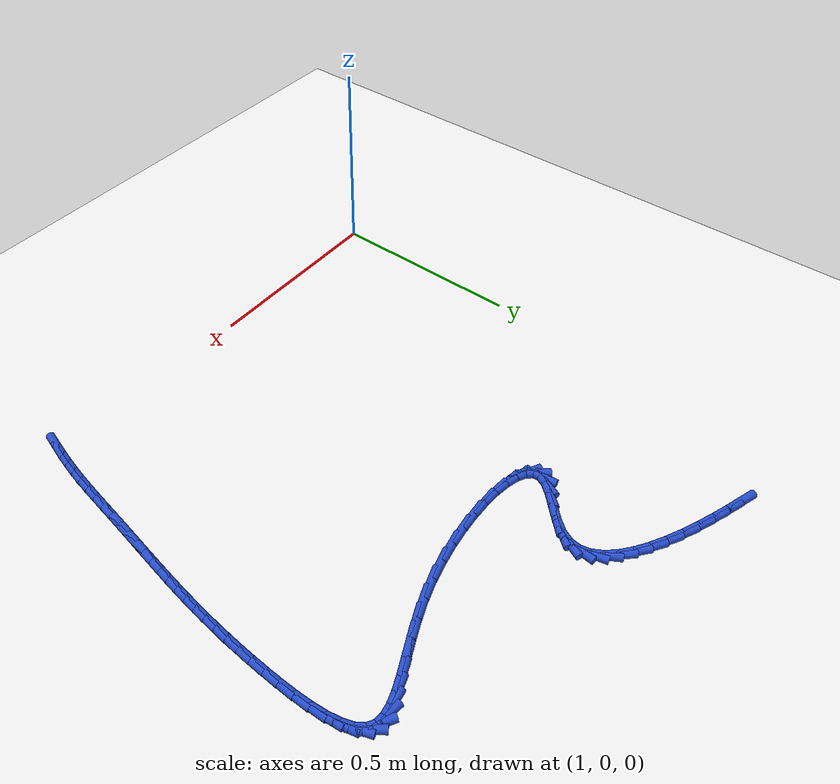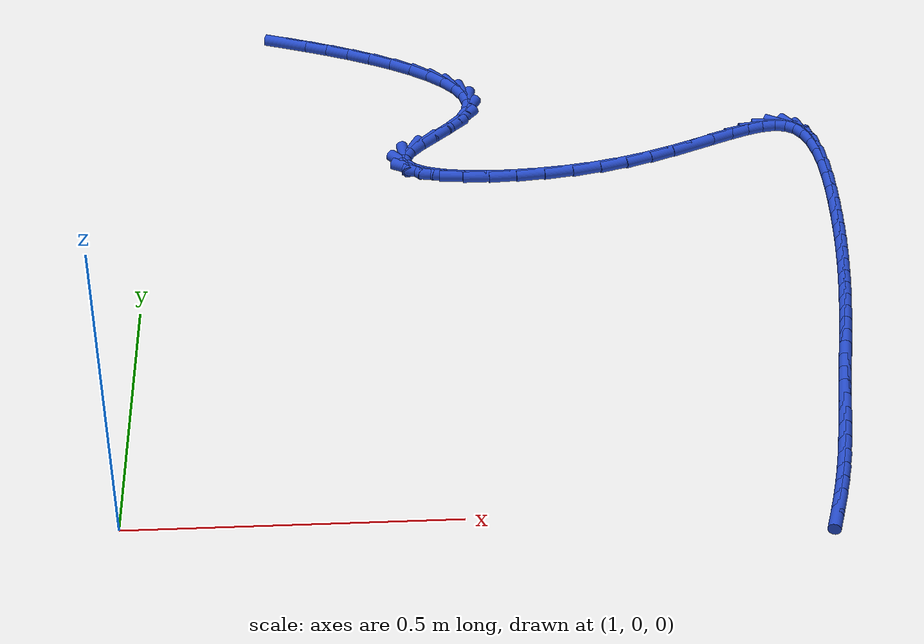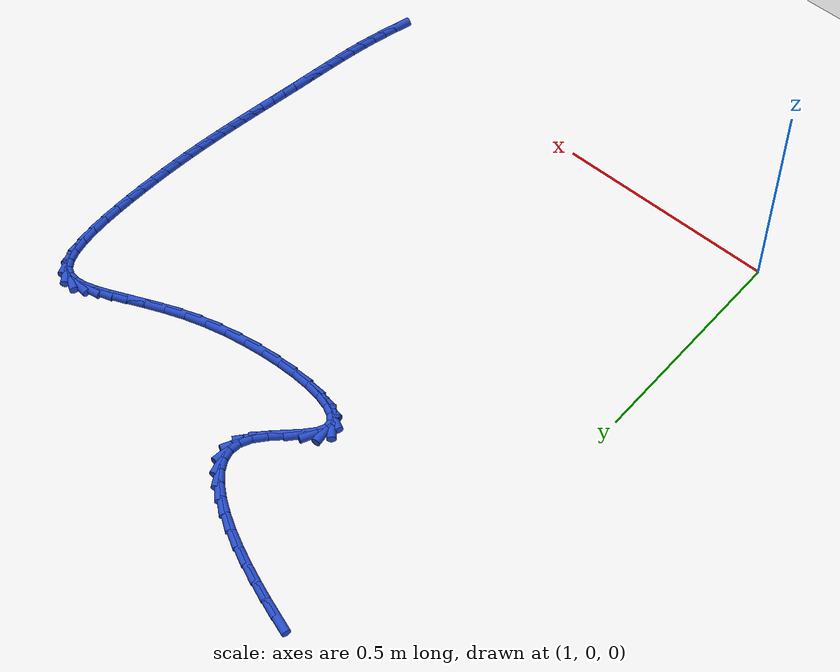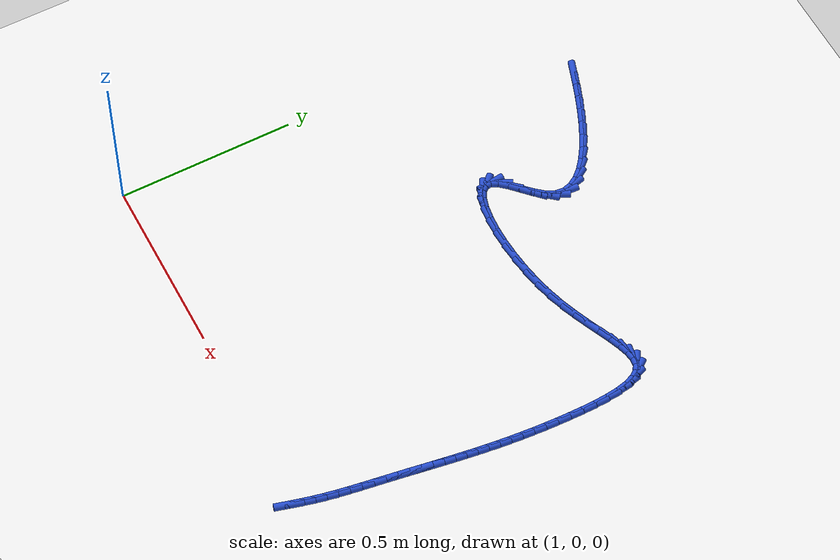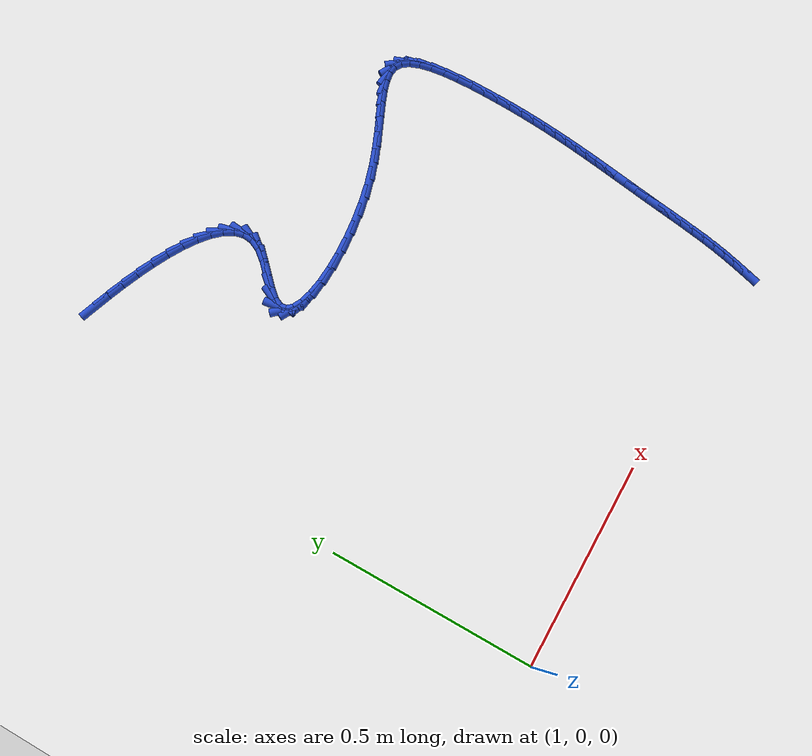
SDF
<sdf version="1.6">
 <world name="default">
  <model name="ground_plane">
   <static>1</static>
   <link name="link">
    <collision name="collision">
     <geometry><plane><normal>0 0 1</normal><size>100 100</size></plane></geometry>
     <surface><friction><ode><mu>100</mu><mu2>50</mu2></ode></friction></surface>
    </collision>
    <visual name="visual">
     <cast_shadows>0</cast_shadows>
     <geometry><plane><normal>0 0 1</normal><size>100 100</size></plane></geometry>
     <material>
      <script><uri>file://media/materials/scripts/gazebo.material</uri><name>Gazebo/WhiteGlow</name></script>
     </material>
    </visual>
   </link>
  </model>
  <model name="line">
   <link name="link_68">
    <pose>1.2202897062401392 1.2758575440553679 0.01 0 1.57 -0.33672678658293276</pose>
    <collision name="collision">
     <geometry><cylinder><radius>0.01</radius><length>0.08</length></cylinder></geometry>
    </collision>
    <visual name="visual">
     <material>
      <script><name>Gazebo/Blue</name><uri>file://media/materials/scripts/gazebo.material</uri></script>
     </material>
     <geometry><cylinder><radius>0.01</radius><length>0.08</length></cylinder></geometry>
    </visual>
   </link>
   <link name="link_69">
    <pose>1.2583109783198574 1.2625478808855013 0.01 0 1.57 -0.3601299603547859</pose>
    <collision name="collision">
     <geometry><cylinder><radius>0.01</radius><length>0.08</length></cylinder></geometry>
    </collision>
    <visual name="visual">
     <material>
      <script><name>Gazebo/Blue</name><uri>file://media/materials/scripts/gazebo.material</uri></script>
     </material>
     <geometry><cylinder><radius>0.01</radius><length>0.08</length></cylinder></geometry>
    </visual>
   </link>
   <link name="link_70">
    <pose>1.2976164029795207 1.247747374808648 0.01 0 1.57 -0.3884289713091154</pose>
    <collision name="collision">
     <geometry><cylinder><radius>0.01</radius><length>0.08</length></cylinder></geometry>
    </collision>
    <visual name="visual">
     <material>
      <script><name>Gazebo/Blue</name><uri>file://media/materials/scripts/gazebo.material</uri></script>
     </material>
     <geometry><cylinder><radius>0.01</radius><length>0.08</length></cylinder></geometry>
    </visual>
   </link>
   <link name="link_71">
    <pose>1.3372088932361523 1.2315453510112444 0.01 0 1.57 -0.42321970724465235</pose>
    <collision name="collision">
     <geometry><cylinder><radius>0.01</radius><length>0.08</length></cylinder></geometry>
    </collision>
    <visual name="visual">
     <material>
      <script><name>Gazebo/Blue</name><uri>file://media/materials/scripts/gazebo.material</uri></script>
     </material>
     <geometry><cylinder><radius>0.01</radius><length>0.08</length></cylinder></geometry>
    </visual>
   </link>
   <link name="link_72">
    <pose>1.3760913621067756 1.2140311346797272 0.01 0 1.57 -0.46685754430328025</pose>
    <collision name="collision">
     <geometry><cylinder><radius>0.01</radius><length>0.08</length></cylinder></geometry>
    </collision>
    <visual name="visual">
     <material>
      <script><name>Gazebo/Blue</name><uri>file://media/materials/scripts/gazebo.material</uri></script>
     </material>
     <geometry><cylinder><radius>0.01</radius><length>0.08</length></cylinder></geometry>
    </visual>
   </link>
   <link name="link_73">
    <pose>1.4132667226084132 1.1952940510005328 0.01 0 1.57 -0.5229172722453892</pose>
    <collision name="collision">
     <geometry><cylinder><radius>0.01</radius><length>0.08</length></cylinder></geometry>
    </collision>
    <visual name="visual">
     <material>
      <script><name>Gazebo/Blue</name><uri>file://media/materials/scripts/gazebo.material</uri></script>
     </material>
     <geometry><cylinder><radius>0.01</radius><length>0.08</length></cylinder></geometry>
    </visual>
   </link>
   <link name="link_74">
    <pose>1.4477378877580875 1.1754234251600972 0.01 0 1.57 -0.5969837903980968</pose>
    <collision name="collision">
     <geometry><cylinder><radius>0.01</radius><length>0.08</length></cylinder></geometry>
    </collision>
    <visual name="visual">
     <material>
      <script><name>Gazebo/Blue</name><uri>file://media/materials/scripts/gazebo.material</uri></script>
     </material>
     <geometry><cylinder><radius>0.01</radius><length>0.08</length></cylinder></geometry>
    </visual>
   </link>
   <link name="link_75">
    <pose>1.4785077705728222 1.1545085823448573 0.01 0 1.57 -0.6979772121660366</pose>
    <collision name="collision">
     <geometry><cylinder><radius>0.01</radius><length>0.08</length></cylinder></geometry>
    </collision>
    <visual name="visual">
     <material>
      <script><name>Gazebo/Blue</name><uri>file://media/materials/scripts/gazebo.material</uri></script>
     </material>
     <geometry><cylinder><radius>0.01</radius><length>0.08</length></cylinder></geometry>
    </visual>
   </link>
   <link name="link_76">
    <pose>1.5045792840696408 1.13263884774125 0.01 0 1.57 -0.8400680507557571</pose>
    <collision name="collision">
     <geometry><cylinder><radius>0.01</radius><length>0.08</length></cylinder></geometry>
    </collision>
    <visual name="visual">
     <material>
      <script><name>Gazebo/Blue</name><uri>file://media/materials/scripts/gazebo.material</uri></script>
     </material>
     <geometry><cylinder><radius>0.01</radius><length>0.08</length></cylinder></geometry>
    </visual>
   </link>
   <link name="link_77">
    <pose>1.5249553412655652 1.1099035465357106 0.01 0 1.57 -1.0437237522075464</pose>
    <collision name="collision">
     <geometry><cylinder><radius>0.01</radius><length>0.08</length></cylinder></geometry>
    </collision>
    <visual name="visual">
     <material>
      <script><name>Gazebo/Blue</name><uri>file://media/materials/scripts/gazebo.material</uri></script>
     </material>
     <geometry><cylinder><radius>0.01</radius><length>0.08</length></cylinder></geometry>
    </visual>
   </link>
   <link name="link_78">
    <pose>1.53863885517762 1.086392003914676 0.01 0 1.57 -1.327986443380439</pose>
    <collision name="collision">
     <geometry><cylinder><radius>0.01</radius><length>0.08</length></cylinder></geometry>
    </collision>
    <visual name="visual">
     <material>
      <script><name>Gazebo/Blue</name><uri>file://media/materials/scripts/gazebo.material</uri></script>
     </material>
     <geometry><cylinder><radius>0.01</radius><length>0.08</length></cylinder></geometry>
    </visual>
   </link>
   <link name="link_79">
    <pose>1.5446327388228265 1.0621935450645834 0.01 0 1.57 1.4626209662618692</pose>
    <collision name="collision">
     <geometry><cylinder><radius>0.01</radius><length>0.08</length></cylinder></geometry>
    </collision>
    <visual name="visual">
     <material>
      <script><name>Gazebo/Blue</name><uri>file://media/materials/scripts/gazebo.material</uri></script>
     </material>
     <geometry><cylinder><radius>0.01</radius><length>0.08</length></cylinder></geometry>
    </visual>
   </link>
   <link name="link_80">
    <pose>1.541939905218209 1.0373974951718683 0.01 0 1.57 1.1165614700404491</pose>
    <collision name="collision">
     <geometry><cylinder><radius>0.01</radius><length>0.08</length></cylinder></geometry>
    </collision>
    <visual name="visual">
     <material>
      <script><name>Gazebo/Blue</name><uri>file://media/materials/scripts/gazebo.material</uri></script>
     </material>
     <geometry><cylinder><radius>0.01</radius><length>0.08</length></cylinder></geometry>
    </visual>
   </link>
   <link name="link_81">
    <pose>1.5295852393779588 1.0120955323657894 0.01 0 1.57 0.8813451083723117</pose>
    <collision name="collision">
     <geometry><cylinder><radius>0.01</radius><length>0.08</length></cylinder></geometry>
    </collision>
    <visual name="visual">
     <material>
      <script><name>Gazebo/Blue</name><uri>file://media/materials/scripts/gazebo.material</uri></script>
     </material>
     <geometry><cylinder><radius>0.01</radius><length>0.08</length></cylinder></geometry>
    </visual>
   </link>
   <link name="link_82">
    <pose>1.5085578605676997 0.9865896811927 0.01 0 1.57 0.7816577707095528</pose>
    <collision name="collision">
     <geometry><cylinder><radius>0.01</radius><length>0.08</length></cylinder></geometry>
    </collision>
    <visual name="visual">
     <material>
      <script><name>Gazebo/Blue</name><uri>file://media/materials/scripts/gazebo.material</uri></script>
     </material>
     <geometry><cylinder><radius>0.01</radius><length>0.08</length></cylinder></geometry>
    </visual>
   </link>
   <link name="link_83">
    <pose>1.4833357869888175 0.9615555862955489 0.01 0 1.57 0.7702911883793834</pose>
    <collision name="collision">
     <geometry><cylinder><radius>0.01</radius><length>0.08</length></cylinder></geometry>
    </collision>
    <visual name="visual">
     <material>
      <script><name>Gazebo/Blue</name><uri>file://media/materials/scripts/gazebo.material</uri></script>
     </material>
     <geometry><cylinder><radius>0.01</radius><length>0.08</length></cylinder></geometry>
    </visual>
   </link>
   <link name="link_84">
    <pose>1.4587558594977454 0.9377073180090296 0.01 0 1.57 0.8546533311582095</pose>
    <collision name="collision">
     <geometry><cylinder><radius>0.01</radius><length>0.08</length></cylinder></geometry>
    </collision>
    <visual name="visual">
     <material>
      <script><name>Gazebo/Blue</name><uri>file://media/materials/scripts/gazebo.material</uri></script>
     </material>
     <geometry><cylinder><radius>0.01</radius><length>0.08</length></cylinder></geometry>
    </visual>
   </link>
   <link name="link_85">
    <pose>1.4396549189509165 0.9157589466678351 0.01 0 1.57 1.1329390493406006</pose>
    <collision name="collision">
     <geometry><cylinder><radius>0.01</radius><length>0.08</length></cylinder></geometry>
    </collision>
    <visual name="visual">
     <material>
      <script><name>Gazebo/Blue</name><uri>file://media/materials/scripts/gazebo.material</uri></script>
     </material>
     <geometry><cylinder><radius>0.01</radius><length>0.08</length></cylinder></geometry>
    </visual>
   </link>
   <link name="link_86">
    <pose>1.4305872710056804 0.8963904814276183 0.01 0 1.57 -1.4453552133090635</pose>
    <collision name="collision">
     <geometry><cylinder><radius>0.01</radius><length>0.08</length></cylinder></geometry>
    </collision>
    <visual name="visual">
     <material>
      <script><name>Gazebo/Blue</name><uri>file://media/materials/scripts/gazebo.material</uri></script>
     </material>
     <geometry><cylinder><radius>0.01</radius><length>0.08</length></cylinder></geometry>
    </visual>
   </link>
   <link name="link_87">
    <pose>1.4326708525440945 0.8798676582048512 0.01 0 1.57 -0.8484726601106188</pose>
    <collision name="collision">
     <geometry><cylinder><radius>0.01</radius><length>0.08</length></cylinder></geometry>
    </collision>
    <visual name="visual">
     <material>
      <script><name>Gazebo/Blue</name><uri>file://media/materials/scripts/gazebo.material</uri></script>
     </material>
     <geometry><cylinder><radius>0.01</radius><length>0.08</length></cylinder></geometry>
    </visual>
   </link>
   <link name="link_88">
    <pose>1.4447322631412833 0.8661799795457624 0.01 0 1.57 -0.48101078128270286</pose>
    <collision name="collision">
     <geometry><cylinder><radius>0.01</radius><length>0.08</length></cylinder></geometry>
    </collision>
    <visual name="visual">
     <material>
      <script><name>Gazebo/Blue</name><uri>file://media/materials/scripts/gazebo.material</uri></script>
     </material>
     <geometry><cylinder><radius>0.01</radius><length>0.08</length></cylinder></geometry>
    </visual>
   </link>
   <link name="link_89">
    <pose>1.4655564309040412 0.8553119242708696 0.01 0 1.57 -0.2769210291822815</pose>
    <collision name="collision">
     <geometry><cylinder><radius>0.01</radius><length>0.08</length></cylinder></geometry>
    </collision>
    <visual name="visual">
     <material>
      <script><name>Gazebo/Blue</name><uri>file://media/materials/scripts/gazebo.material</uri></script>
     </material>
     <geometry><cylinder><radius>0.01</radius><length>0.08</length></cylinder></geometry>
    </visual>
   </link>
   <link name="link_90">
    <pose>1.4939282839391643 0.8472479712006911 0.01 0 1.57 -0.150853617896155</pose>
    <collision name="collision">
     <geometry><cylinder><radius>0.01</radius><length>0.08</length></cylinder></geometry>
    </collision>
    <visual name="visual">
     <material>
      <script><name>Gazebo/Blue</name><uri>file://media/materials/scripts/gazebo.material</uri></script>
     </material>
     <geometry><cylinder><radius>0.01</radius><length>0.08</length></cylinder></geometry>
    </visual>
   </link>
   <link name="link_91">
    <pose>1.528632750353449 0.8419725991557455 0.01 0 1.57 -0.06275490909228171</pose>
    <collision name="collision">
     <geometry><cylinder><radius>0.01</radius><length>0.08</length></cylinder></geometry>
    </collision>
    <visual name="visual">
     <material>
      <script><name>Gazebo/Blue</name><uri>file://media/materials/scripts/gazebo.material</uri></script>
     </material>
     <geometry><cylinder><radius>0.01</radius><length>0.08</length></cylinder></geometry>
    </visual>
   </link>
   <link name="link_92">
    <pose>1.5684547582536896 0.8394702869565511 0.01 0 1.57 0.005837086754264454</pose>
    <collision name="collision">
     <geometry><cylinder><radius>0.01</radius><length>0.08</length></cylinder></geometry>
    </collision>
    <visual name="visual">
     <material>
      <script><name>Gazebo/Blue</name><uri>file://media/materials/scripts/gazebo.material</uri></script>
     </material>
     <geometry><cylinder><radius>0.01</radius><length>0.08</length></cylinder></geometry>
    </visual>
   </link>
   <link name="link_93">
    <pose>1.6121792357466815 0.8397255134236257 0.01 0 1.57 0.06448969555384837</pose>
    <collision name="collision">
     <geometry><cylinder><radius>0.01</radius><length>0.08</length></cylinder></geometry>
    </collision>
    <visual name="visual">
     <material>
      <script><name>Gazebo/Blue</name><uri>file://media/materials/scripts/gazebo.material</uri></script>
     </material>
     <geometry><cylinder><radius>0.01</radius><length>0.08</length></cylinder></geometry>
    </visual>
   </link>
   <link name="link_94">
    <pose>1.658591110939221 0.8427227573774878 0.01 0 1.57 0.11896849007562103</pose>
    <collision name="collision">
     <geometry><cylinder><radius>0.01</radius><length>0.08</length></cylinder></geometry>
    </collision>
    <visual name="visual">
     <material>
      <script><name>Gazebo/Blue</name><uri>file://media/materials/scripts/gazebo.material</uri></script>
     </material>
     <geometry><cylinder><radius>0.01</radius><length>0.08</length></cylinder></geometry>
    </visual>
   </link>
   <link name="link_95">
    <pose>1.7064753119381046 0.8484464976386561 0.01 0 1.57 0.17344641766334956</pose>
    <collision name="collision">
     <geometry><cylinder><radius>0.01</radius><length>0.08</length></cylinder></geometry>
    </collision>
    <visual name="visual">
     <material>
      <script><name>Gazebo/Blue</name><uri>file://media/materials/scripts/gazebo.material</uri></script>
     </material>
     <geometry><cylinder><radius>0.01</radius><length>0.08</length></cylinder></geometry>
    </visual>
   </link>
   <link name="link_96">
    <pose>1.7546167668501254 0.8568812130276482 0.01 0 1.57 0.2316556411406692</pose>
    <collision name="collision">
     <geometry><cylinder><radius>0.01</radius><length>0.08</length></cylinder></geometry>
    </collision>
    <visual name="visual">
     <material>
      <script><name>Gazebo/Blue</name><uri>file://media/materials/scripts/gazebo.material</uri></script>
     </material>
     <geometry><cylinder><radius>0.01</radius><length>0.08</length></cylinder></geometry>
    </visual>
   </link>
   <link name="link_97">
    <pose>1.8018004037820798 0.8680113823649824 0.01 0 1.57 0.2965117265925648</pose>
    <collision name="collision">
     <geometry><cylinder><radius>0.01</radius><length>0.08</length></cylinder></geometry>
    </collision>
    <visual name="visual">
     <material>
      <script><name>Gazebo/Blue</name><uri>file://media/materials/scripts/gazebo.material</uri></script>
     </material>
     <geometry><cylinder><radius>0.01</radius><length>0.08</length></cylinder></geometry>
    </visual>
   </link>
   <link name="link_98">
    <pose>1.8468548013407047 0.8817763249263997 0.01 0 1.57 0.3553229764662927</pose>
    <collision name="collision">
     <geometry><cylinder><radius>0.01</radius><length>0.08</length></cylinder></geometry>
    </collision>
    <visual name="visual">
     <material>
      <script><name>Gazebo/Blue</name><uri>file://media/materials/scripts/gazebo.material</uri></script>
     </material>
     <geometry><cylinder><radius>0.01</radius><length>0.08</length></cylinder></geometry>
    </visual>
   </link>
   <link name="link_99">
    <pose>1.8892099494967336 0.8974931571844786 0.01 0 1.57 0.3961832663904021</pose>
    <collision name="collision">
     <geometry><cylinder><radius>0.01</radius><length>0.08</length></cylinder></geometry>
    </collision>
    <visual name="visual">
     <material>
      <script><name>Gazebo/Blue</name><uri>file://media/materials/scripts/gazebo.material</uri></script>
     </material>
     <geometry><cylinder><radius>0.01</radius><length>0.08</length></cylinder></geometry>
    </visual>
   </link>
   <link name="link_100">
    <pose>1.9287336979068277 0.9140259986445292 0.01 0 1.57 0.41706707195978754</pose>
    <collision name="collision">
     <geometry><cylinder><radius>0.01</radius><length>0.08</length></cylinder></geometry>
    </collision>
    <visual name="visual">
     <material>
      <script><name>Gazebo/Blue</name><uri>file://media/materials/scripts/gazebo.material</uri></script>
     </material>
     <geometry><cylinder><radius>0.01</radius><length>0.08</length></cylinder></geometry>
    </visual>
   </link>
   <link name="link_101">
    <pose>1.9653038000071914 0.9302287226479745 0.01 0 1.57 0.414232390930549</pose>
    <collision name="collision">
     <geometry><cylinder><radius>0.01</radius><length>0.08</length></cylinder></geometry>
    </collision>
    <visual name="visual">
     <material>
      <script><name>Gazebo/Blue</name><uri>file://media/materials/scripts/gazebo.material</uri></script>
     </material>
     <geometry><cylinder><radius>0.01</radius><length>0.08</length></cylinder></geometry>
    </visual>
   </link>
   <link name="link_102">
    <pose>1.9987980092340356 0.94495520253624 0.01 0 1.57 0.38009887192462083</pose>
    <collision name="collision">
     <geometry><cylinder><radius>0.01</radius><length>0.08</length></cylinder></geometry>
    </collision>
    <visual name="visual">
     <material>
      <script><name>Gazebo/Blue</name><uri>file://media/materials/scripts/gazebo.material</uri></script>
     </material>
     <geometry><cylinder><radius>0.01</radius><length>0.08</length></cylinder></geometry>
    </visual>
   </link>
   <link name="link_103">
    <pose>2.0290940790235674 0.9570593116507498 0.01 0 1.57 0.299697329849995</pose>
    <collision name="collision">
     <geometry><cylinder><radius>0.01</radius><length>0.08</length></cylinder></geometry>
    </collision>
    <visual name="visual">
     <material>
      <script><name>Gazebo/Blue</name><uri>file://media/materials/scripts/gazebo.material</uri></script>
     </material>
     <geometry><cylinder><radius>0.01</radius><length>0.08</length></cylinder></geometry>
    </visual>
   </link>
   <link name="link_104">
    <pose>2.056069762811996 0.9653949233329286 0.01 0 1.57 0.14435828151628421</pose>
    <collision name="collision">
     <geometry><cylinder><radius>0.01</radius><length>0.08</length></cylinder></geometry>
    </collision>
    <visual name="visual">
     <material>
      <script><name>Gazebo/Blue</name><uri>file://media/materials/scripts/gazebo.material</uri></script>
     </material>
     <geometry><cylinder><radius>0.01</radius><length>0.08</length></cylinder></geometry>
    </visual>
   </link>
   <link name="link_105">
    <pose>2.0796028140355283 0.9688159109242005 0.01 0 1.57 -0.1314363934344031</pose>
    <collision name="collision">
     <geometry><cylinder><radius>0.01</radius><length>0.08</length></cylinder></geometry>
    </collision>
    <visual name="visual">
     <material>
      <script><name>Gazebo/Blue</name><uri>file://media/materials/scripts/gazebo.material</uri></script>
     </material>
     <geometry><cylinder><radius>0.01</radius><length>0.08</length></cylinder></geometry>
    </visual>
   </link>
   <link name="link_106">
    <pose>2.0995709861303733 0.96617614776599 0.01 0 1.57 -0.543935301549268</pose>
    <collision name="collision">
     <geometry><cylinder><radius>0.01</radius><length>0.08</length></cylinder></geometry>
    </collision>
    <visual name="visual">
     <material>
      <script><name>Gazebo/Blue</name><uri>file://media/materials/scripts/gazebo.material</uri></script>
     </material>
     <geometry><cylinder><radius>0.01</radius><length>0.08</length></cylinder></geometry>
    </visual>
   </link>
   <link name="link_107">
    <pose>2.1158520325691557 0.956329507358838 0.01 0 1.57 -0.9550442450317014</pose>
    <collision name="collision">
     <geometry><cylinder><radius>0.01</radius><length>0.08</length></cylinder></geometry>
    </collision>
    <visual name="visual">
     <material>
      <script><name>Gazebo/Blue</name><uri>file://media/materials/scripts/gazebo.material</uri></script>
     </material>
     <geometry><cylinder><radius>0.01</radius><length>0.08</length></cylinder></geometry>
    </visual>
   </link>
   <link name="link_108">
    <pose>2.128422660538849 0.9385622225441891 0.01 0 1.57 -1.2135072919934171</pose>
    <collision name="collision">
     <geometry><cylinder><radius>0.01</radius><length>0.08</length></cylinder></geometry>
    </collision>
    <visual name="visual">
     <material>
      <script><name>Gazebo/Blue</name><uri>file://media/materials/scripts/gazebo.material</uri></script>
     </material>
     <geometry><cylinder><radius>0.01</radius><length>0.08</length></cylinder></geometry>
    </visual>
   </link>
   <link name="link_109">
    <pose>2.1376469138501464 0.9138529195056121 0.01 0 1.57 -1.364362433674167</pose>
    <collision name="collision">
     <geometry><cylinder><radius>0.01</radius><length>0.08</length></cylinder></geometry>
    </collision>
    <visual name="visual">
     <material>
      <script><name>Gazebo/Blue</name><uri>file://media/materials/scripts/gazebo.material</uri></script>
     </material>
     <geometry><cylinder><radius>0.01</radius><length>0.08</length></cylinder></geometry>
    </visual>
   </link>
   <link name="link_110">
    <pose>2.1439835961187974 0.8835942592825415 0.01 0 1.57 -1.4577291419999643</pose>
    <collision name="collision">
     <geometry><cylinder><radius>0.01</radius><length>0.08</length></cylinder></geometry>
    </collision>
    <visual name="visual">
     <material>
      <script><name>Gazebo/Blue</name><uri>file://media/materials/scripts/gazebo.material</uri></script>
     </material>
     <geometry><cylinder><radius>0.01</radius><length>0.08</length></cylinder></geometry>
    </visual>
   </link>
   <link name="link_111">
    <pose>2.147891510960549 0.8491789029144099 0.01 0 1.57 -1.518719122018012</pose>
    <collision name="collision">
     <geometry><cylinder><radius>0.01</radius><length>0.08</length></cylinder></geometry>
    </collision>
    <visual name="visual">
     <material>
      <script><name>Gazebo/Blue</name><uri>file://media/materials/scripts/gazebo.material</uri></script>
     </material>
     <geometry><cylinder><radius>0.01</radius><length>0.08</length></cylinder></geometry>
    </visual>
   </link>
   <link name="link_112">
    <pose>2.14982946199115 0.811999511440651 0.01 0 1.57 -1.5597259007201365</pose>
    <collision name="collision">
     <geometry><cylinder><radius>0.01</radius><length>0.08</length></cylinder></geometry>
    </collision>
    <visual name="visual">
     <material>
      <script><name>Gazebo/Blue</name><uri>file://media/materials/scripts/gazebo.material</uri></script>
     </material>
     <geometry><cylinder><radius>0.01</radius><length>0.08</length></cylinder></geometry>
    </visual>
   </link>
   <link name="link_113">
    <pose>2.1502562528263502 0.7734487459006977 0.01 0 1.57 1.5545617238820968</pose>
    <collision name="collision">
     <geometry><cylinder><radius>0.01</radius><length>0.08</length></cylinder></geometry>
    </collision>
    <visual name="visual">
     <material>
      <script><name>Gazebo/Blue</name><uri>file://media/materials/scripts/gazebo.material</uri></script>
     </material>
     <geometry><cylinder><radius>0.01</radius><length>0.08</length></cylinder></geometry>
    </visual>
   </link>
   <link name="link_114">
    <pose>2.1496306870818946 0.7349192673339843 0.01 0 1.57 1.5367191588014004</pose>
    <collision name="collision">
     <geometry><cylinder><radius>0.01</radius><length>0.08</length></cylinder></geometry>
    </collision>
    <visual name="visual">
     <material>
      <script><name>Gazebo/Blue</name><uri>file://media/materials/scripts/gazebo.material</uri></script>
     </material>
     <geometry><cylinder><radius>0.01</radius><length>0.08</length></cylinder></geometry>
    </visual>
   </link>
   <link name="link_115">
    <pose>2.1483588061008416 0.6976101629560889 0.01 0 1.57 1.521024447834655</pose>
    <collision name="collision">
     <geometry><cylinder><radius>0.01</radius><length>0.08</length></cylinder></geometry>
    </collision>
    <visual name="visual">
     <material>
      <script><name>Gazebo/Blue</name><uri>file://media/materials/scripts/gazebo.material</uri></script>
     </material>
     <geometry><cylinder><radius>0.01</radius><length>0.08</length></cylinder></geometry>
    </visual>
   </link>
   <link name="link_116">
    <pose>2.146570353197544 0.6617068398810539 0.01 0 1.57 1.505495731107758</pose>
    <collision name="collision">
     <geometry><cylinder><radius>0.01</radius><length>0.08</length></cylinder></geometry>
    </collision>
    <visual name="visual">
     <material>
      <script><name>Gazebo/Blue</name><uri>file://media/materials/scripts/gazebo.material</uri></script>
     </material>
     <geometry><cylinder><radius>0.01</radius><length>0.08</length></cylinder></geometry>
    </visual>
   </link>
   <link name="link_117">
    <pose>2.144304934963335 0.6270640123006029 0.01 0 1.57 1.4903557798594735</pose>
    <collision name="collision">
     <geometry><cylinder><radius>0.01</radius><length>0.08</length></cylinder></geometry>
    </collision>
    <visual name="visual">
     <material>
      <script><name>Gazebo/Blue</name><uri>file://media/materials/scripts/gazebo.material</uri></script>
     </material>
     <geometry><cylinder><radius>0.01</radius><length>0.08</length></cylinder></geometry>
    </visual>
   </link>
   <link name="link_118">
    <pose>2.141602108088703 0.5935362113306233 0.01 0 1.57 1.475847854387833</pose>
    <collision name="collision">
     <geometry><cylinder><radius>0.01</radius><length>0.08</length></cylinder></geometry>
    </collision>
    <visual name="visual">
     <material>
      <script><name>Gazebo/Blue</name><uri>file://media/materials/scripts/gazebo.material</uri></script>
     </material>
     <geometry><cylinder><radius>0.01</radius><length>0.08</length></cylinder></geometry>
    </visual>
   </link>
   <link name="link_119">
    <pose>2.138501429264137 0.5609779680870004 0.01 0 1.57 1.4622264697861953</pose>
    <collision name="collision">
     <geometry><cylinder><radius>0.01</radius><length>0.08</length></cylinder></geometry>
    </collision>
    <visual name="visual">
     <material>
      <script><name>Gazebo/Blue</name><uri>file://media/materials/scripts/gazebo.material</uri></script>
     </material>
     <geometry><cylinder><radius>0.01</radius><length>0.08</length></cylinder></geometry>
    </visual>
   </link>
   <link name="link_120">
    <pose>2.135042455180126 0.5292438136856206 0.01 0 1.57 1.4497472699569804</pose>
    <collision name="collision">
     <geometry><cylinder><radius>0.01</radius><length>0.08</length></cylinder></geometry>
    </collision>
    <visual name="visual">
     <material>
      <script><name>Gazebo/Blue</name><uri>file://media/materials/scripts/gazebo.material</uri></script>
     </material>
     <geometry><cylinder><radius>0.01</radius><length>0.08</length></cylinder></geometry>
    </visual>
   </link>
   <link name="link_121">
    <pose>2.131264742527158 0.4981882792423698 0.01 0 1.57 1.4386554586150586</pose>
    <collision name="collision">
     <geometry><cylinder><radius>0.01</radius><length>0.08</length></cylinder></geometry>
    </collision>
    <visual name="visual">
     <material>
      <script><name>Gazebo/Blue</name><uri>file://media/materials/scripts/gazebo.material</uri></script>
     </material>
     <geometry><cylinder><radius>0.01</radius><length>0.08</length></cylinder></geometry>
    </visual>
   </link>
   <link name="link_122">
    <pose>2.1272078479957215 0.4676658958731338 0.01 0 1.57 1.429173678894488</pose>
    <collision name="collision">
     <geometry><cylinder><radius>0.01</radius><length>0.08</length></cylinder></geometry>
    </collision>
    <visual name="visual">
     <material>
      <script><name>Gazebo/Blue</name><uri>file://media/materials/scripts/gazebo.material</uri></script>
     </material>
     <geometry><cylinder><radius>0.01</radius><length>0.08</length></cylinder></geometry>
    </visual>
   </link>
   <link name="link_123">
    <pose>2.122911328276307 0.43753119469379975 0.01 0 1.57 1.4214904062381266</pose>
    <collision name="collision">
     <geometry><cylinder><radius>0.01</radius><length>0.08</length></cylinder></geometry>
    </collision>
    <visual name="visual">
     <material>
      <script><name>Gazebo/Blue</name><uri>file://media/materials/scripts/gazebo.material</uri></script>
     </material>
     <geometry><cylinder><radius>0.01</radius><length>0.08</length></cylinder></geometry>
    </visual>
   </link>
   <link name="link_124">
    <pose>2.1184147400594013 0.40763870682025294 0.01 0 1.57 1.415749947255585</pose>
    <collision name="collision">
     <geometry><cylinder><radius>0.01</radius><length>0.08</length></cylinder></geometry>
    </collision>
    <visual name="visual">
     <material>
      <script><name>Gazebo/Blue</name><uri>file://media/materials/scripts/gazebo.material</uri></script>
     </material>
     <geometry><cylinder><radius>0.01</radius><length>0.08</length></cylinder></geometry>
    </visual>
   </link>
   <link name="link_125">
    <pose>2.113757640035495 0.3778429633683798 0.01 0 1.57 1.4120450053358387</pose>
    <collision name="collision">
     <geometry><cylinder><radius>0.01</radius><length>0.08</length></cylinder></geometry>
    </collision>
    <visual name="visual">
     <material>
      <script><name>Gazebo/Blue</name><uri>file://media/materials/scripts/gazebo.material</uri></script>
     </material>
     <geometry><cylinder><radius>0.01</radius><length>0.08</length></cylinder></geometry>
    </visual>
   </link>
   <link name="link_126">
    <pose>2.1089795848950748 0.3479984954540659 0.01 0 1.57 1.4104125011618387</pose>
    <collision name="collision">
     <geometry><cylinder><radius>0.01</radius><length>0.08</length></cylinder></geometry>
    </collision>
    <visual name="visual">
     <material>
      <script><name>Gazebo/Blue</name><uri>file://media/materials/scripts/gazebo.material</uri></script>
     </material>
     <geometry><cylinder><radius>0.01</radius><length>0.08</length></cylinder></geometry>
    </visual>
   </link>
   <link name="link_127">
    <pose>2.1041201313286315 0.31795983419319834 0.01 0 1.57 1.4108329705893077</pose>
    <collision name="collision">
     <geometry><cylinder><radius>0.01</radius><length>0.08</length></cylinder></geometry>
    </collision>
    <visual name="visual">
     <material>
      <script><name>Gazebo/Blue</name><uri>file://media/materials/scripts/gazebo.material</uri></script>
     </material>
     <geometry><cylinder><radius>0.01</radius><length>0.08</length></cylinder></geometry>
    </visual>
   </link>
   <link name="link_128">
    <pose>2.099218836026652 0.28758151070166255 0.01 0 1.57 1.4132334668530109</pose>
    <collision name="collision">
     <geometry><cylinder><radius>0.01</radius><length>0.08</length></cylinder></geometry>
    </collision>
    <visual name="visual">
     <material>
      <script><name>Gazebo/Blue</name><uri>file://media/materials/scripts/gazebo.material</uri></script>
     </material>
     <geometry><cylinder><radius>0.01</radius><length>0.08</length></cylinder></geometry>
    </visual>
   </link>
   <link name="link_129">
    <pose>2.094315255679627 0.256718056095345 0.01 0 1.57 1.417205111633727</pose>
    <collision name="collision">
     <geometry><cylinder><radius>0.01</radius><length>0.08</length></cylinder></geometry>
    </collision>
    <visual name="visual">
     <material>
      <script><name>Gazebo/Blue</name><uri>file://media/materials/scripts/gazebo.material</uri></script>
     </material>
     <geometry><cylinder><radius>0.01</radius><length>0.08</length></cylinder></geometry>
    </visual>
   </link>
   <link name="link_130">
    <pose>2.089442612636791 0.2252431634546859 0.01 0 1.57 1.4188431934079977</pose>
    <collision name="collision">
     <geometry><cylinder><radius>0.01</radius><length>0.08</length></cylinder></geometry>
    </collision>
    <visual name="visual">
     <material>
      <script><name>Gazebo/Blue</name><uri>file://media/materials/scripts/gazebo.material</uri></script>
     </material>
     <geometry><cylinder><radius>0.01</radius><length>0.08</length></cylinder></geometry>
    </visual>
   </link>
   <link name="link_131">
    <pose>2.084549145153607 0.1932876105557237 0.01 0 1.57 1.4155628773253808</pose>
    <collision name="collision">
     <geometry><cylinder><radius>0.01</radius><length>0.08</length></cylinder></geometry>
    </collision>
    <visual name="visual">
     <material>
      <script><name>Gazebo/Blue</name><uri>file://media/materials/scripts/gazebo.material</uri></script>
     </material>
     <geometry><cylinder><radius>0.01</radius><length>0.08</length></cylinder></geometry>
    </visual>
   </link>
   <link name="link_132">
    <pose>2.079522344723515 0.16116593971359286 0.01 0 1.57 1.4072993225488695</pose>
    <collision name="collision">
     <geometry><cylinder><radius>0.01</radius><length>0.08</length></cylinder></geometry>
    </collision>
    <visual name="visual">
     <material>
      <script><name>Gazebo/Blue</name><uri>file://media/materials/scripts/gazebo.material</uri></script>
     </material>
     <geometry><cylinder><radius>0.01</radius><length>0.08</length></cylinder></geometry>
    </visual>
   </link>
   <link name="link_133">
    <pose>2.0742483879148605 0.1291966710126992 0.01 0 1.57 1.3937726877256027</pose>
    <collision name="collision">
     <geometry><cylinder><radius>0.01</radius><length>0.08</length></cylinder></geometry>
    </collision>
    <visual name="visual">
     <material>
      <script><name>Gazebo/Blue</name><uri>file://media/materials/scripts/gazebo.material</uri></script>
     </material>
     <geometry><cylinder><radius>0.01</radius><length>0.08</length></cylinder></geometry>
    </visual>
   </link>
   <link name="link_134">
    <pose>2.068613451295994 0.09769832453744895 0.01 0 1.57 1.3744042153157945</pose>
    <collision name="collision">
     <geometry><cylinder><radius>0.01</radius><length>0.08</length></cylinder></geometry>
    </collision>
    <visual name="visual">
     <material>
      <script><name>Gazebo/Blue</name><uri>file://media/materials/scripts/gazebo.material</uri></script>
     </material>
     <geometry><cylinder><radius>0.01</radius><length>0.08</length></cylinder></geometry>
    </visual>
   </link>
   <link name="link_135">
    <pose>2.0625037114352627 0.06698942037224807 0.01 0 1.57 1.3493457716013346</pose>
    <collision name="collision">
     <geometry><cylinder><radius>0.01</radius><length>0.08</length></cylinder></geometry>
    </collision>
    <visual name="visual">
     <material>
      <script><name>Gazebo/Blue</name><uri>file://media/materials/scripts/gazebo.material</uri></script>
     </material>
     <geometry><cylinder><radius>0.01</radius><length>0.08</length></cylinder></geometry>
    </visual>
   </link>
   <link name="link_136">
    <pose>2.055828319378044 0.037339856220457913 0.01 0 1.57 1.3256571556487455</pose>
    <collision name="collision">
     <geometry><cylinder><radius>0.01</radius><length>0.08</length></cylinder></geometry>
    </collision>
    <visual name="visual">
     <material>
      <script><name>Gazebo/Blue</name><uri>file://media/materials/scripts/gazebo.material</uri></script>
     </material>
     <geometry><cylinder><radius>0.01</radius><length>0.08</length></cylinder></geometry>
    </visual>
   </link>
   <link name="link_137">
    <pose>2.04865790991016 0.008677771235269641 0.01 0 1.57 1.3072706898431468</pose>
    <collision name="collision">
     <geometry><cylinder><radius>0.01</radius><length>0.08</length></cylinder></geometry>
    </collision>
    <visual name="visual">
     <material>
      <script><name>Gazebo/Blue</name><uri>file://media/materials/scripts/gazebo.material</uri></script>
     </material>
     <geometry><cylinder><radius>0.01</radius><length>0.08</length></cylinder></geometry>
    </visual>
   </link>
   <link name="link_138">
    <pose>2.041132366100645 -0.01921525007895245 0.01 0 1.57 1.2949239282269067</pose>
    <collision name="collision">
     <geometry><cylinder><radius>0.01</radius><length>0.08</length></cylinder></geometry>
    </collision>
    <visual name="visual">
     <material>
      <script><name>Gazebo/Blue</name><uri>file://media/materials/scripts/gazebo.material</uri></script>
     </material>
     <geometry><cylinder><radius>0.01</radius><length>0.08</length></cylinder></geometry>
    </visual>
   </link>
  </model>
 </world>
</sdf>
